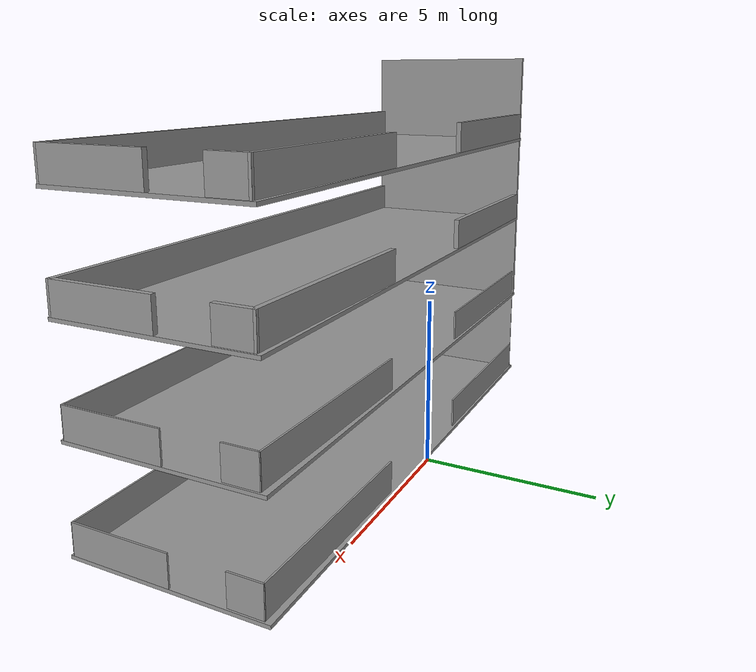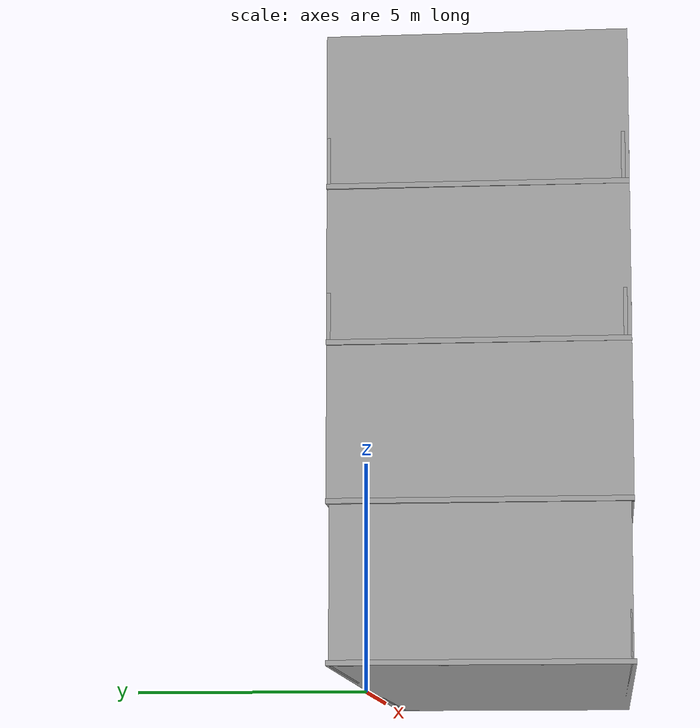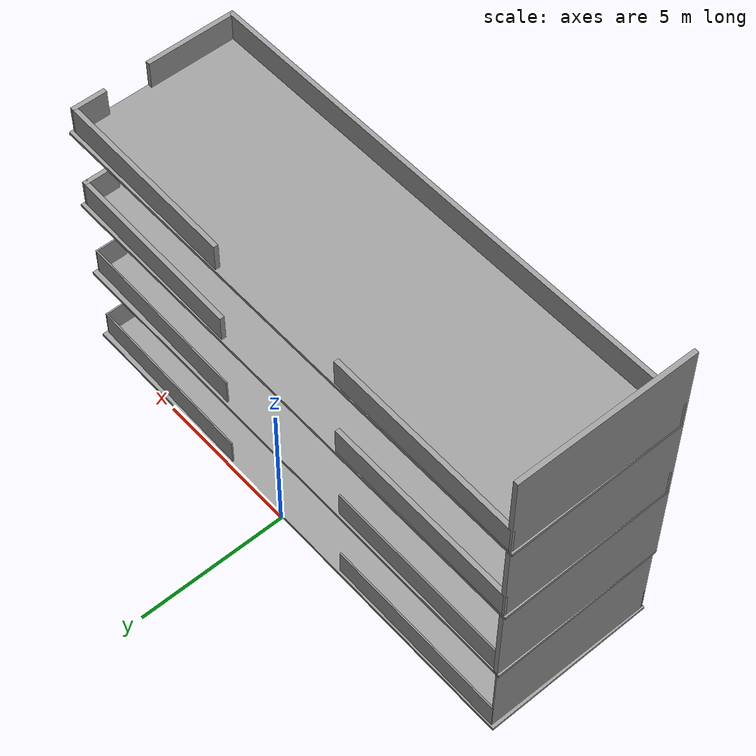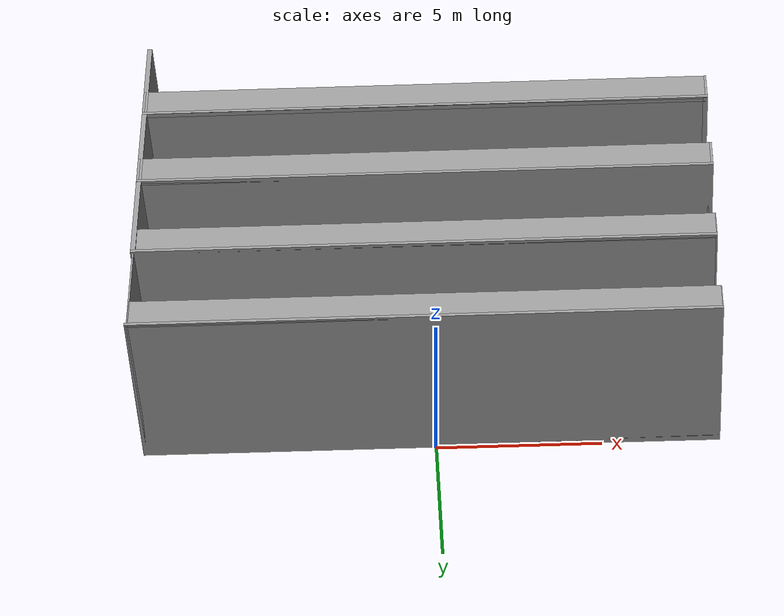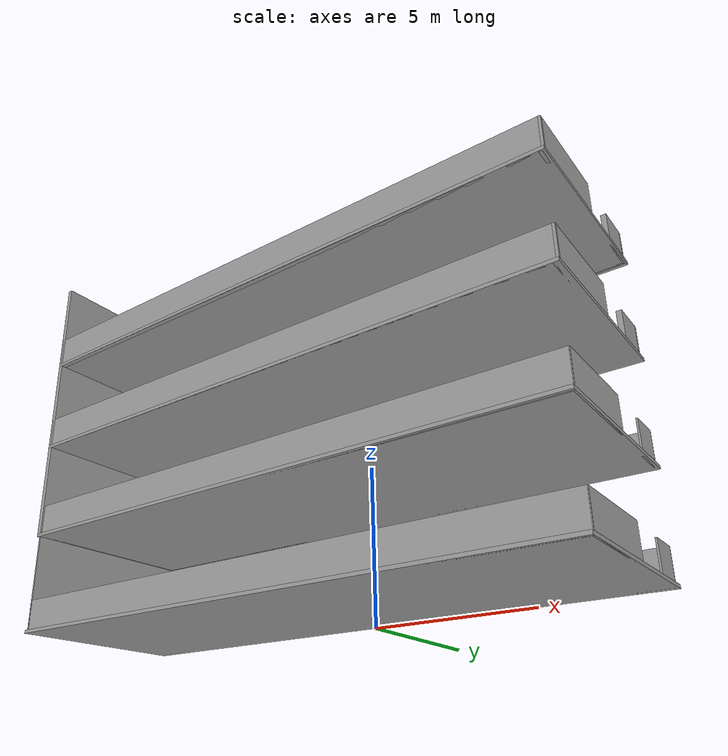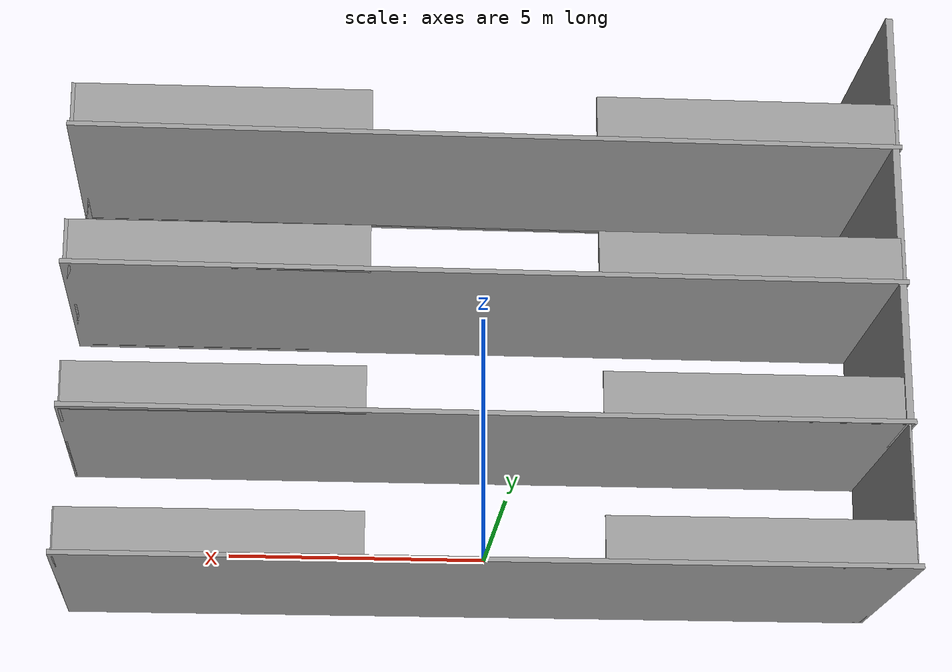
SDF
<?xml version='1.0'?>
<sdf version='1.7'>
  <model name='multifloor_building'>
    <pose>-0.127322 -2.87339 0 0 -0 0</pose>
    <link name='Floor_0'>
      <collision name='Floor_0_Collision'>
        <geometry>
          <box>
            <size>17.4048 5.71356 0.1</size>
          </box>
        </geometry>
        <pose>0 0 0.05 0 -0 0</pose>
      </collision>
      <visual name='Floor_0_Visual'>
        <pose>0 0 0.05 0 -0 0</pose>
        <geometry>
          <box>
            <size>17.4048 5.71356 0.1</size>
          </box>
        </geometry>
        <material>
          <script>
            <uri>file://media/materials/scripts/gazebo.material</uri>
            <name>Gazebo/Grey</name>
          </script>
          <ambient>1 1 1 1</ambient>
        </material>
        <meta>
          <layer>0</layer>
        </meta>
      </visual>
      <pose>-0.025045 -0.016611 0 0 -0 0</pose>
    </link>
    <link name='Floor_6'>
      <collision name='Floor_6_Collision'>
        <geometry>
          <box>
            <size>17.4048 5.71356 0.1</size>
          </box>
        </geometry>
        <pose>0 0 0.05 0 -0 0</pose>
      </collision>
      <visual name='Floor_6_Visual'>
        <pose>0 0 0.05 0 -0 0</pose>
        <geometry>
          <box>
            <size>17.4048 5.71356 0.1</size>
          </box>
        </geometry>
        <material>
          <script>
            <uri>file://media/materials/scripts/gazebo.material</uri>
            <name>Gazebo/Grey</name>
          </script>
          <ambient>1 1 1 1</ambient>
        </material>
        <meta>
          <layer>1</layer>
        </meta>
      </visual>
      <pose>-0.025045 -0.016611 3.0 0 -0 0</pose>
    </link>
    <link name='Floor_8'>
      <collision name='Floor_8_Collision'>
        <geometry>
          <box>
            <size>17.4549 5.71356 0.1</size>
          </box>
        </geometry>
        <pose>0 0 0.05 0 -0 0</pose>
      </collision>
      <visual name='Floor_8_Visual'>
        <pose>0 0 0.05 0 -0 0</pose>
        <geometry>
          <box>
            <size>17.4549 5.71356 0.1</size>
          </box>
        </geometry>
        <material>
          <script>
            <uri>file://media/materials/scripts/gazebo.material</uri>
            <name>Gazebo/Grey</name>
          </script>
          <ambient>1 1 1 1</ambient>
        </material>
        <meta>
          <layer>2</layer>
        </meta>
      </visual>
      <pose>-0 -0.016611 6.0 0 -0 0</pose>
    </link>
    <link name='Floor_9'>
      <collision name='Floor_9_Collision'>
        <geometry>
          <box>
            <size>17.4549 5.71356 0.1</size>
          </box>
        </geometry>
        <pose>0 0 0.05 0 -0 0</pose>
      </collision>
      <visual name='Floor_9_Visual'>
        <pose>0 0 0.05 0 -0 0</pose>
        <geometry>
          <box>
            <size>17.4549 5.71356 0.1</size>
          </box>
        </geometry>
        <material>
          <script>
            <uri>file://media/materials/scripts/gazebo.material</uri>
            <name>Gazebo/Grey</name>
          </script>
          <ambient>1 1 1 1</ambient>
        </material>
        <meta>
          <layer>3</layer>
        </meta>
      </visual>
      <pose>-0 -0.016611 9.0 0 -0 0</pose>
    </link>
    <link name='Wall_11'>
      <collision name='Wall_11_Collision'>
        <geometry>
          <box>
            <size>6.1448 0.05 1</size>
          </box>
        </geometry>
        <pose>0 0 0.5 0 -0 0</pose>
      </collision>
      <visual name='Wall_11_Visual'>
        <pose>0 0 0.5 0 -0 0</pose>
        <geometry>
          <box>
            <size>6.1448 0.05 1</size>
          </box>
        </geometry>
        <material>
          <script>
            <uri>file://media/materials/scripts/gazebo.material</uri>
            <name>Gazebo/Grey</name>
          </script>
          <ambient>1 1 1 1</ambient>
        </material>
        <meta>
          <layer>0</layer>
        </meta>
      </visual>
      <pose>5.55323 2.68693 0 0 -0 3.1273</pose>
    </link>
    <link name='Wall_13'>
      <collision name='Wall_13_Collision'>
        <geometry>
          <box>
            <size>2.9 0.05 1</size>
          </box>
        </geometry>
        <pose>0 0 0.5 0 -0 0</pose>
      </collision>
      <visual name='Wall_13_Visual'>
        <pose>0 0 0.5 0 -0 0</pose>
        <geometry>
          <box>
            <size>2.9 0.05 1</size>
          </box>
        </geometry>
        <material>
          <script>
            <uri>file://media/materials/scripts/gazebo.material</uri>
            <name>Gazebo/Grey</name>
          </script>
          <ambient>1 1 1 1</ambient>
        </material>
        <meta>
          <layer>0</layer>
        </meta>
      </visual>
      <pose>8.65232 -1.34161 0 0 -0 1.5708</pose>
    </link>
    <link name='Wall_15'>
      <collision name='Wall_15_Collision'>
        <geometry>
          <box>
            <size>1 0.05 1</size>
          </box>
        </geometry>
        <pose>0 0 0.5 0 -0 0</pose>
      </collision>
      <visual name='Wall_15_Visual'>
        <pose>0 0 0.5 0 -0 0</pose>
        <geometry>
          <box>
            <size>1 0.05 1</size>
          </box>
        </geometry>
        <material>
          <script>
            <uri>file://media/materials/scripts/gazebo.material</uri>
            <name>Gazebo/Grey</name>
          </script>
          <ambient>1 1 1 1</ambient>
        </material>
        <meta>
          <layer>0</layer>
        </meta>
      </visual>
      <pose>8.60032 2.16839 0 0 -0 -1.5708</pose>
    </link>
    <link name='Wall_5'>
      <collision name='Wall_5_Collision'>
        <geometry>
          <box>
            <size>6.28057 0.05 1</size>
          </box>
        </geometry>
        <pose>0 0 0.5 0 -0 0</pose>
      </collision>
      <visual name='Wall_5_Visual'>
        <pose>0 0 0.5 0 -0 0</pose>
        <geometry>
          <box>
            <size>6.28057 0.05 1</size>
          </box>
        </geometry>
        <material>
          <script>
            <uri>file://media/materials/scripts/gazebo.material</uri>
            <name>Gazebo/Grey</name>
          </script>
          <ambient>1 1 1 1</ambient>
        </material>
        <meta>
          <layer>0</layer>
        </meta>
      </visual>
      <pose>-5.45879 2.74982 0 0 -0 3.13686</pose>
    </link>
    <link name='Wall_53'>
      <collision name='Wall_53_Collision'>
        <geometry>
          <box>
            <size>6.30021 0.05 1</size>
          </box>
        </geometry>
        <pose>0 0 0.5 0 -0 0</pose>
      </collision>
      <visual name='Wall_53_Visual'>
        <pose>0 0 0.5 0 -0 0</pose>
        <geometry>
          <box>
            <size>6.30021 0.05 1</size>
          </box>
        </geometry>
        <material>
          <script>
            <uri>file://media/materials/scripts/gazebo.material</uri>
            <name>Gazebo/Grey</name>
          </script>
          <ambient>1 1 1 1</ambient>
        </material>
        <meta>
          <layer>1</layer>
        </meta>
      </visual>
      <pose>-5.46861 2.74973 3.0 0 -0 3.1369</pose>
    </link>
    <link name='Wall_54'>
      <collision name='Wall_54_Collision'>
        <geometry>
          <box>
            <size>5.7123 0.15 3</size>
          </box>
        </geometry>
        <pose>0 0 1.5 0 -0 0</pose>
      </collision>
      <visual name='Wall_54_Visual'>
        <pose>0 0 1.5 0 -0 0</pose>
        <geometry>
          <box>
            <size>5.7123 0.15 3</size>
          </box>
        </geometry>
        <material>
          <script>
            <uri>file://media/materials/scripts/gazebo.material</uri>
            <name>Gazebo/Grey</name>
          </script>
          <ambient>1 1 1 1</ambient>
        </material>
        <meta>
          <layer>1</layer>
        </meta>
      </visual>
      <pose>-8.62268 -0.016611 3.0 0 -0 -1.58122</pose>
    </link>
    <link name='Wall_55'>
      <collision name='Wall_55_Collision'>
        <geometry>
          <box>
            <size>17.354 0.05 1</size>
          </box>
        </geometry>
        <pose>0 0 0.5 0 -0 0</pose>
      </collision>
      <visual name='Wall_55_Visual'>
        <pose>0 0 0.5 0 -0 0</pose>
        <geometry>
          <box>
            <size>17.354 0.05 1</size>
          </box>
        </geometry>
        <material>
          <script>
            <uri>file://media/materials/scripts/gazebo.material</uri>
            <name>Gazebo/Grey</name>
          </script>
          <ambient>1 1 1 1</ambient>
        </material>
        <meta>
          <layer>1</layer>
        </meta>
      </visual>
      <pose>0.000322 -2.78211 3.0 0 -0 0.001791</pose>
    </link>
    <link name='Wall_56'>
      <collision name='Wall_56_Collision'>
        <geometry>
          <box>
            <size>6.1448 0.05 1</size>
          </box>
        </geometry>
        <pose>0 0 0.5 0 -0 0</pose>
      </collision>
      <visual name='Wall_56_Visual'>
        <pose>0 0 0.5 0 -0 0</pose>
        <geometry>
          <box>
            <size>6.1448 0.05 1</size>
          </box>
        </geometry>
        <material>
          <script>
            <uri>file://media/materials/scripts/gazebo.material</uri>
            <name>Gazebo/Grey</name>
          </script>
          <ambient>1 1 1 1</ambient>
        </material>
        <meta>
          <layer>1</layer>
        </meta>
      </visual>
      <pose>5.55323 2.68693 3.0 0 -0 3.1273</pose>
    </link>
    <link name='Wall_57'>
      <collision name='Wall_57_Collision'>
        <geometry>
          <box>
            <size>2.9 0.05 1</size>
          </box>
        </geometry>
        <pose>0 0 0.5 0 -0 0</pose>
      </collision>
      <visual name='Wall_57_Visual'>
        <pose>0 0 0.5 0 -0 0</pose>
        <geometry>
          <box>
            <size>2.9 0.05 1</size>
          </box>
        </geometry>
        <material>
          <script>
            <uri>file://media/materials/scripts/gazebo.material</uri>
            <name>Gazebo/Grey</name>
          </script>
          <ambient>1 1 1 1</ambient>
        </material>
        <meta>
          <layer>1</layer>
        </meta>
      </visual>
      <pose>8.65232 -1.34161 3.0 0 -0 1.5708</pose>
    </link>
    <link name='Wall_58'>
      <collision name='Wall_58_Collision'>
        <geometry>
          <box>
            <size>1 0.05 1</size>
          </box>
        </geometry>
        <pose>0 0 0.5 0 -0 0</pose>
      </collision>
      <visual name='Wall_58_Visual'>
        <pose>0 0 0.5 0 -0 0</pose>
        <geometry>
          <box>
            <size>1 0.05 1</size>
          </box>
        </geometry>
        <material>
          <script>
            <uri>file://media/materials/scripts/gazebo.material</uri>
            <name>Gazebo/Grey</name>
          </script>
          <ambient>1 1 1 1</ambient>
        </material>
        <meta>
          <layer>1</layer>
        </meta>
      </visual>
      <pose>8.60032 2.16839 3.0 0 -0 -1.5708</pose>
    </link>
    <link name='Wall_6'>
      <collision name='Wall_6_Collision'>
        <geometry>
          <box>
            <size>5.61248 0.05 3.0</size>
          </box>
        </geometry>
        <pose>0 0 1.5 0 -0 0</pose>
      </collision>
      <visual name='Wall_6_Visual'>
        <pose>0 0 1.5 0 -0 0</pose>
        <geometry>
          <box>
            <size>5.61248 0.05 3.0</size>
          </box>
        </geometry>
        <material>
          <script>
            <uri>file://media/materials/scripts/gazebo.material</uri>
            <name>Gazebo/Grey</name>
          </script>
          <ambient>1 1 1 1</ambient>
        </material>
        <meta>
          <layer>0</layer>
        </meta>
      </visual>
      <pose>-8.62292 -0.01652 0 0 -0 -1.58114</pose>
    </link>
    <link name='Wall_65'>
      <collision name='Wall_65_Collision'>
        <geometry>
          <box>
            <size>6.40021 0.15 1</size>
          </box>
        </geometry>
        <pose>0 0 0.5 0 -0 0</pose>
      </collision>
      <visual name='Wall_65_Visual'>
        <pose>0 0 0.5 0 -0 0</pose>
        <geometry>
          <box>
            <size>6.40021 0.15 1</size>
          </box>
        </geometry>
        <material>
          <script>
            <uri>file://media/materials/scripts/gazebo.material</uri>
            <name>Gazebo/Grey</name>
          </script>
          <ambient>1 1 1 1</ambient>
        </material>
        <meta>
          <layer>2</layer>
        </meta>
      </visual>
      <pose>-5.46861 2.74973 6.0 0 -0 3.1369</pose>
    </link>
    <link name='Wall_66'>
      <collision name='Wall_66_Collision'>
        <geometry>
          <box>
            <size>5.7123 0.15 3</size>
          </box>
        </geometry>
        <pose>0 0 1.5 0 -0 0</pose>
      </collision>
      <visual name='Wall_66_Visual'>
        <pose>0 0 1.5 0 -0 0</pose>
        <geometry>
          <box>
            <size>5.7123 0.15 3</size>
          </box>
        </geometry>
        <material>
          <script>
            <uri>file://media/materials/scripts/gazebo.material</uri>
            <name>Gazebo/Grey</name>
          </script>
          <ambient>1 1 1 1</ambient>
        </material>
        <meta>
          <layer>2</layer>
        </meta>
      </visual>
      <pose>-8.62268 -0.016611 6.0 0 -0 -1.58122</pose>
    </link>
    <link name='Wall_67'>
      <collision name='Wall_67_Collision'>
        <geometry>
          <box>
            <size>17.454 0.15 1</size>
          </box>
        </geometry>
        <pose>0 0 0.5 0 -0 0</pose>
      </collision>
      <visual name='Wall_67_Visual'>
        <pose>0 0 0.5 0 -0 0</pose>
        <geometry>
          <box>
            <size>17.454 0.15 1</size>
          </box>
        </geometry>
        <material>
          <script>
            <uri>file://media/materials/scripts/gazebo.material</uri>
            <name>Gazebo/Grey</name>
          </script>
          <ambient>1 1 1 1</ambient>
        </material>
        <meta>
          <layer>2</layer>
        </meta>
      </visual>
      <pose>0.000322 -2.78211 6.0 0 -0 0.001791</pose>
    </link>
    <link name='Wall_68'>
      <collision name='Wall_68_Collision'>
        <geometry>
          <box>
            <size>6.2448 0.15 1</size>
          </box>
        </geometry>
        <pose>0 0 0.5 0 -0 0</pose>
      </collision>
      <visual name='Wall_68_Visual'>
        <pose>0 0 0.5 0 -0 0</pose>
        <geometry>
          <box>
            <size>6.2448 0.15 1</size>
          </box>
        </geometry>
        <material>
          <script>
            <uri>file://media/materials/scripts/gazebo.material</uri>
            <name>Gazebo/Grey</name>
          </script>
          <ambient>1 1 1 1</ambient>
        </material>
        <meta>
          <layer>2</layer>
        </meta>
      </visual>
      <pose>5.55323 2.68693 6.0 0 -0 3.1273</pose>
    </link>
    <link name='Wall_69'>
      <collision name='Wall_69_Collision'>
        <geometry>
          <box>
            <size>3 0.15 1</size>
          </box>
        </geometry>
        <pose>0 0 0.5 0 -0 0</pose>
      </collision>
      <visual name='Wall_69_Visual'>
        <pose>0 0 0.5 0 -0 0</pose>
        <geometry>
          <box>
            <size>3 0.15 1</size>
          </box>
        </geometry>
        <material>
          <script>
            <uri>file://media/materials/scripts/gazebo.material</uri>
            <name>Gazebo/Grey</name>
          </script>
          <ambient>1 1 1 1</ambient>
        </material>
        <meta>
          <layer>2</layer>
        </meta>
      </visual>
      <pose>8.65232 -1.34161 6.0 0 -0 1.5708</pose>
    </link>
    <link name='Wall_7'>
      <collision name='Wall_7_Collision'>
        <geometry>
          <box>
            <size>17.354 0.05 1</size>
          </box>
        </geometry>
        <pose>0 0 0.5 0 -0 0</pose>
      </collision>
      <visual name='Wall_7_Visual'>
        <pose>0 0 0.5 0 -0 0</pose>
        <geometry>
          <box>
            <size>17.354 0.05 1</size>
          </box>
        </geometry>
        <material>
          <script>
            <uri>file://media/materials/scripts/gazebo.material</uri>
            <name>Gazebo/Grey</name>
          </script>
          <ambient>1 1 1 1</ambient>
        </material>
        <meta>
          <layer>0</layer>
        </meta>
      </visual>
      <pose>0.000322 -2.78211 0 0 -0 0.001791</pose>
    </link>
    <link name='Wall_70'>
      <collision name='Wall_70_Collision'>
        <geometry>
          <box>
            <size>1.1 0.15 1</size>
          </box>
        </geometry>
        <pose>0 0 0.5 0 -0 0</pose>
      </collision>
      <visual name='Wall_70_Visual'>
        <pose>0 0 0.5 0 -0 0</pose>
        <geometry>
          <box>
            <size>1.1 0.15 1</size>
          </box>
        </geometry>
        <material>
          <script>
            <uri>file://media/materials/scripts/gazebo.material</uri>
            <name>Gazebo/Grey</name>
          </script>
          <ambient>1 1 1 1</ambient>
        </material>
        <meta>
          <layer>2</layer>
        </meta>
      </visual>
      <pose>8.60032 2.16839 6.0 0 -0 -1.5708</pose>
    </link>
    <link name='Wall_71'>
      <collision name='Wall_71_Collision'>
        <geometry>
          <box>
            <size>6.40021 0.15 1</size>
          </box>
        </geometry>
        <pose>0 0 0.5 0 -0 0</pose>
      </collision>
      <visual name='Wall_71_Visual'>
        <pose>0 0 0.5 0 -0 0</pose>
        <geometry>
          <box>
            <size>6.40021 0.15 1</size>
          </box>
        </geometry>
        <material>
          <script>
            <uri>file://media/materials/scripts/gazebo.material</uri>
            <name>Gazebo/Grey</name>
          </script>
          <ambient>1 1 1 1</ambient>
        </material>
        <meta>
          <layer>3</layer>
        </meta>
      </visual>
      <pose>-5.46861 2.74973 9.0 0 -0 3.1369</pose>
    </link>
    <link name='Wall_72'>
      <collision name='Wall_72_Collision'>
        <geometry>
          <box>
            <size>5.7123 0.15 3</size>
          </box>
        </geometry>
        <pose>0 0 1.5 0 -0 0</pose>
      </collision>
      <visual name='Wall_72_Visual'>
        <pose>0 0 1.5 0 -0 0</pose>
        <geometry>
          <box>
            <size>5.7123 0.15 3</size>
          </box>
        </geometry>
        <material>
          <script>
            <uri>file://media/materials/scripts/gazebo.material</uri>
            <name>Gazebo/Grey</name>
          </script>
          <ambient>1 1 1 1</ambient>
        </material>
        <meta>
          <layer>3</layer>
        </meta>
      </visual>
      <pose>-8.62268 -0.016611 9.0 0 -0 -1.58122</pose>
    </link>
    <link name='Wall_73'>
      <collision name='Wall_73_Collision'>
        <geometry>
          <box>
            <size>17.454 0.15 1</size>
          </box>
        </geometry>
        <pose>0 0 0.5 0 -0 0</pose>
      </collision>
      <visual name='Wall_73_Visual'>
        <pose>0 0 0.5 0 -0 0</pose>
        <geometry>
          <box>
            <size>17.454 0.15 1</size>
          </box>
        </geometry>
        <material>
          <script>
            <uri>file://media/materials/scripts/gazebo.material</uri>
            <name>Gazebo/Grey</name>
          </script>
          <ambient>1 1 1 1</ambient>
        </material>
        <meta>
          <layer>3</layer>
        </meta>
      </visual>
      <pose>0.000322 -2.78211 9.0 0 -0 0.001791</pose>
    </link>
    <link name='Wall_74'>
      <collision name='Wall_74_Collision'>
        <geometry>
          <box>
            <size>6.2448 0.15 1</size>
          </box>
        </geometry>
        <pose>0 0 0.5 0 -0 0</pose>
      </collision>
      <visual name='Wall_74_Visual'>
        <pose>0 0 0.5 0 -0 0</pose>
        <geometry>
          <box>
            <size>6.2448 0.15 1</size>
          </box>
        </geometry>
        <material>
          <script>
            <uri>file://media/materials/scripts/gazebo.material</uri>
            <name>Gazebo/Grey</name>
          </script>
          <ambient>1 1 1 1</ambient>
        </material>
        <meta>
          <layer>3</layer>
        </meta>
      </visual>
      <pose>5.55323 2.68693 9.0 0 -0 3.1273</pose>
    </link>
    <link name='Wall_75'>
      <collision name='Wall_75_Collision'>
        <geometry>
          <box>
            <size>3 0.15 1</size>
          </box>
        </geometry>
        <pose>0 0 0.5 0 -0 0</pose>
      </collision>
      <visual name='Wall_75_Visual'>
        <pose>0 0 0.5 0 -0 0</pose>
        <geometry>
          <box>
            <size>3 0.15 1</size>
          </box>
        </geometry>
        <material>
          <script>
            <uri>file://media/materials/scripts/gazebo.material</uri>
            <name>Gazebo/Grey</name>
          </script>
          <ambient>1 1 1 1</ambient>
        </material>
        <meta>
          <layer>3</layer>
        </meta>
      </visual>
      <pose>8.65232 -1.34161 9.0 0 -0 1.5708</pose>
    </link>
    <link name='Wall_76'>
      <collision name='Wall_76_Collision'>
        <geometry>
          <box>
            <size>1.1 0.15 1</size>
          </box>
        </geometry>
        <pose>0 0 0.5 0 -0 0</pose>
      </collision>
      <visual name='Wall_76_Visual'>
        <pose>0 0 0.5 0 -0 0</pose>
        <geometry>
          <box>
            <size>1.1 0.15 1</size>
          </box>
        </geometry>
        <material>
          <script>
            <uri>file://media/materials/scripts/gazebo.material</uri>
            <name>Gazebo/Grey</name>
          </script>
          <ambient>1 1 1 1</ambient>
        </material>
        <meta>
          <layer>3</layer>
        </meta>
      </visual>
      <pose>8.60032 2.16839 9.0 0 -0 -1.5708</pose>
    </link>
    <static>1</static>
  </model>
</sdf>
